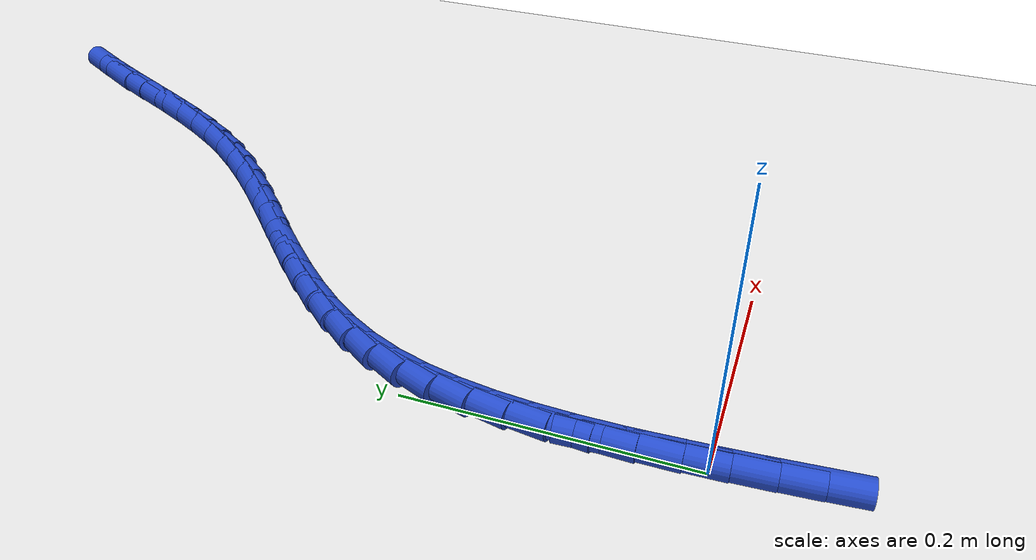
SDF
<sdf version="1.6">
 <world name="default">
  <model name="ground_plane">
   <static>1</static>
   <link name="link">
    <collision name="collision">
     <geometry><plane><normal>0 0 1</normal><size>100 100</size></plane></geometry>
     <surface><friction><ode><mu>100</mu><mu2>50</mu2></ode></friction></surface>
    </collision>
    <visual name="visual">
     <cast_shadows>0</cast_shadows>
     <geometry><plane><normal>0 0 1</normal><size>100 100</size></plane></geometry>
     <material>
      <script><uri>file://media/materials/scripts/gazebo.material</uri><name>Gazebo/WhiteGlow</name></script>
     </material>
    </visual>
   </link>
  </model>
  <model name="line">
   <link name="link_0">
    <pose>-3.144186300207963e-18 -2.7755575615628914e-17 0.01 0 1.57 -1.5155655868217317</pose>
    <collision name="collision">
     <geometry><cylinder><radius>0.01</radius><length>0.08</length></cylinder></geometry>
    </collision>
    <visual name="visual">
     <material>
      <script><name>Gazebo/Blue</name><uri>file://media/materials/scripts/gazebo.material</uri></script>
     </material>
     <geometry><cylinder><radius>0.01</radius><length>0.08</length></cylinder></geometry>
    </visual>
   </link>
   <link name="link_1">
    <pose>-0.0015131828939657498 0.027369612644585345 0.01 0 1.57 -1.5385693356199552</pose>
    <collision name="collision">
     <geometry><cylinder><radius>0.01</radius><length>0.08</length></cylinder></geometry>
    </collision>
    <visual name="visual">
     <material>
      <script><name>Gazebo/Blue</name><uri>file://media/materials/scripts/gazebo.material</uri></script>
     </material>
     <geometry><cylinder><radius>0.01</radius><length>0.08</length></cylinder></geometry>
    </visual>
   </link>
   <link name="link_2">
    <pose>-0.0024024075205045657 0.05495260222829566 0.01 0 1.57 1.5706447185464925</pose>
    <collision name="collision">
     <geometry><cylinder><radius>0.01</radius><length>0.08</length></cylinder></geometry>
    </collision>
    <visual name="visual">
     <material>
      <script><name>Gazebo/Blue</name><uri>file://media/materials/scripts/gazebo.material</uri></script>
     </material>
     <geometry><cylinder><radius>0.01</radius><length>0.08</length></cylinder></geometry>
    </visual>
   </link>
   <link name="link_3">
    <pose>-0.0023982279416030626 0.08252088372666737 0.01 0 1.57 1.5281137982298083</pose>
    <collision name="collision">
     <geometry><cylinder><radius>0.01</radius><length>0.08</length></cylinder></geometry>
    </collision>
    <visual name="visual">
     <material>
      <script><name>Gazebo/Blue</name><uri>file://media/materials/scripts/gazebo.material</uri></script>
     </material>
     <geometry><cylinder><radius>0.01</radius><length>0.08</length></cylinder></geometry>
    </visual>
   </link>
   <link name="link_4">
    <pose>-0.0012311982192478557 0.10984637211523679 0.01 0 1.57 1.4743043803389275</pose>
    <collision name="collision">
     <geometry><cylinder><radius>0.01</radius><length>0.08</length></cylinder></geometry>
    </collision>
    <visual name="visual">
     <material>
      <script><name>Gazebo/Blue</name><uri>file://media/materials/scripts/gazebo.material</uri></script>
     </material>
     <geometry><cylinder><radius>0.01</radius><length>0.08</length></cylinder></geometry>
    </visual>
   </link>
   <link name="link_5">
    <pose>0.001368127584574442 0.13670098236954034 0.01 0 1.57 1.4078136785738362</pose>
    <collision name="collision">
     <geometry><cylinder><radius>0.01</radius><length>0.08</length></cylinder></geometry>
    </collision>
    <visual name="visual">
     <material>
      <script><name>Gazebo/Blue</name><uri>file://media/materials/scripts/gazebo.material</uri></script>
     </material>
     <geometry><cylinder><radius>0.01</radius><length>0.08</length></cylinder></geometry>
    </visual>
   </link>
   <link name="link_6">
    <pose>0.00566919540787722 0.1628566294651144 0.01 0 1.57 1.327119838038077</pose>
    <collision name="collision">
     <geometry><cylinder><radius>0.01</radius><length>0.08</length></cylinder></geometry>
    </collision>
    <visual name="visual">
     <material>
      <script><name>Gazebo/Blue</name><uri>file://media/materials/scripts/gazebo.material</uri></script>
     </material>
     <geometry><cylinder><radius>0.01</radius><length>0.08</length></cylinder></geometry>
    </visual>
   </link>
   <link name="link_7">
    <pose>0.01194145118867386 0.18808522837749536 0.01 0 1.57 1.230899075451566</pose>
    <collision name="collision">
     <geometry><cylinder><radius>0.01</radius><length>0.08</length></cylinder></geometry>
    </collision>
    <visual name="visual">
     <material>
      <script><name>Gazebo/Blue</name><uri>file://media/materials/scripts/gazebo.material</uri></script>
     </material>
     <geometry><cylinder><radius>0.01</radius><length>0.08</length></cylinder></geometry>
    </visual>
   </link>
   <link name="link_8">
    <pose>0.020454340864977754 0.2121586940822196 0.01 0 1.57 1.1193891497618498</pose>
    <collision name="collision">
     <geometry><cylinder><radius>0.01</radius><length>0.08</length></cylinder></geometry>
    </collision>
    <visual name="visual">
     <material>
      <script><name>Gazebo/Blue</name><uri>file://media/materials/scripts/gazebo.material</uri></script>
     </material>
     <geometry><cylinder><radius>0.01</radius><length>0.08</length></cylinder></geometry>
    </visual>
   </link>
   <link name="link_9">
    <pose>0.03146032617717873 0.23486119402031436 0.01 0 1.57 1.008697879521988</pose>
    <collision name="collision">
     <geometry><cylinder><radius>0.01</radius><length>0.08</length></cylinder></geometry>
    </collision>
    <visual name="visual">
     <material>
      <script><name>Gazebo/Blue</name><uri>file://media/materials/scripts/gazebo.material</uri></script>
     </material>
     <geometry><cylinder><radius>0.01</radius><length>0.08</length></cylinder></geometry>
    </visual>
   </link>
   <link name="link_10">
    <pose>0.044901599075144176 0.2562007254530614 0.01 0 1.57 0.9143473147754952</pose>
    <collision name="collision">
     <geometry><cylinder><radius>0.01</radius><length>0.08</length></cylinder></geometry>
    </collision>
    <visual name="visual">
     <material>
      <script><name>Gazebo/Blue</name><uri>file://media/materials/scripts/gazebo.material</uri></script>
     </material>
     <geometry><cylinder><radius>0.01</radius><length>0.08</length></cylinder></geometry>
    </visual>
   </link>
   <link name="link_11">
    <pose>0.06044908451519783 0.2763809786942422 0.01 0 1.57 0.8377700902250539</pose>
    <collision name="collision">
     <geometry><cylinder><radius>0.01</radius><length>0.08</length></cylinder></geometry>
    </collision>
    <visual name="visual">
     <material>
      <script><name>Gazebo/Blue</name><uri>file://media/materials/scripts/gazebo.material</uri></script>
     </material>
     <geometry><cylinder><radius>0.01</radius><length>0.08</length></cylinder></geometry>
    </visual>
   </link>
   <link name="link_12">
    <pose>0.07776456797215217 0.29561223731475306 0.01 0 1.57 0.7786116346671724</pose>
    <collision name="collision">
     <geometry><cylinder><radius>0.01</radius><length>0.08</length></cylinder></geometry>
    </collision>
    <visual name="visual">
     <material>
      <script><name>Gazebo/Blue</name><uri>file://media/materials/scripts/gazebo.material</uri></script>
     </material>
     <geometry><cylinder><radius>0.01</radius><length>0.08</length></cylinder></geometry>
    </visual>
   </link>
   <link name="link_13">
    <pose>0.0965098349208197 0.31410478488549026 0.01 0 1.57 0.7358971410100231</pose>
    <collision name="collision">
     <geometry><cylinder><radius>0.01</radius><length>0.08</length></cylinder></geometry>
    </collision>
    <visual name="visual">
     <material>
      <script><name>Gazebo/Blue</name><uri>file://media/materials/scripts/gazebo.material</uri></script>
     </material>
     <geometry><cylinder><radius>0.01</radius><length>0.08</length></cylinder></geometry>
    </visual>
   </link>
   <link name="link_14">
    <pose>0.11634667083601286 0.33206890497735025 0.01 0 1.57 0.7085490389407896</pose>
    <collision name="collision">
     <geometry><cylinder><radius>0.01</radius><length>0.08</length></cylinder></geometry>
    </collision>
    <visual name="visual">
     <material>
      <script><name>Gazebo/Blue</name><uri>file://media/materials/scripts/gazebo.material</uri></script>
     </material>
     <geometry><cylinder><radius>0.01</radius><length>0.08</length></cylinder></geometry>
    </visual>
   </link>
   <link name="link_15">
    <pose>0.13693686119254422 0.3497148811612294 0.01 0 1.57 0.6956836310359242</pose>
    <collision name="collision">
     <geometry><cylinder><radius>0.01</radius><length>0.08</length></cylinder></geometry>
    </collision>
    <visual name="visual">
     <material>
      <script><name>Gazebo/Blue</name><uri>file://media/materials/scripts/gazebo.material</uri></script>
     </material>
     <geometry><cylinder><radius>0.01</radius><length>0.08</length></cylinder></geometry>
    </visual>
   </link>
   <link name="link_16">
    <pose>0.15794219146522626 0.36725299700802405 0.01 0 1.57 0.6967502145703364</pose>
    <collision name="collision">
     <geometry><cylinder><radius>0.01</radius><length>0.08</length></cylinder></geometry>
    </collision>
    <visual name="visual">
     <material>
      <script><name>Gazebo/Blue</name><uri>file://media/materials/scripts/gazebo.material</uri></script>
     </material>
     <geometry><cylinder><radius>0.01</radius><length>0.08</length></cylinder></geometry>
    </visual>
   </link>
   <link name="link_17">
    <pose>0.1790244471288714 0.3848935360886303 0.01 0 1.57 0.7115730939831011</pose>
    <collision name="collision">
     <geometry><cylinder><radius>0.01</radius><length>0.08</length></cylinder></geometry>
    </collision>
    <visual name="visual">
     <material>
      <script><name>Gazebo/Blue</name><uri>file://media/materials/scripts/gazebo.material</uri></script>
     </material>
     <geometry><cylinder><radius>0.01</radius><length>0.08</length></cylinder></geometry>
    </visual>
   </link>
   <link name="link_18">
    <pose>0.19984541365829217 0.4028467819739448 0.01 0 1.57 0.7403297258838916</pose>
    <collision name="collision">
     <geometry><cylinder><radius>0.01</radius><length>0.08</length></cylinder></geometry>
    </collision>
    <visual name="visual">
     <material>
      <script><name>Gazebo/Blue</name><uri>file://media/materials/scripts/gazebo.material</uri></script>
     </material>
     <geometry><cylinder><radius>0.01</radius><length>0.08</length></cylinder></geometry>
    </visual>
   </link>
   <link name="link_19">
    <pose>0.220066876528301 0.4213230182348637 0.01 0 1.57 0.783469659659139</pose>
    <collision name="collision">
     <geometry><cylinder><radius>0.01</radius><length>0.08</length></cylinder></geometry>
    </collision>
    <visual name="visual">
     <material>
      <script><name>Gazebo/Blue</name><uri>file://media/materials/scripts/gazebo.material</uri></script>
     </material>
     <geometry><cylinder><radius>0.01</radius><length>0.08</length></cylinder></geometry>
    </visual>
   </link>
   <link name="link_20">
    <pose>0.23935062121371053 0.4405325284422835 0.01 0 1.57 0.8415551008620998</pose>
    <collision name="collision">
     <geometry><cylinder><radius>0.01</radius><length>0.08</length></cylinder></geometry>
    </collision>
    <visual name="visual">
     <material>
      <script><name>Gazebo/Blue</name><uri>file://media/materials/scripts/gazebo.material</uri></script>
     </material>
     <geometry><cylinder><radius>0.01</radius><length>0.08</length></cylinder></geometry>
    </visual>
   </link>
   <link name="link_21">
    <pose>0.2573584343836197 0.4606855953335093 0.01 0 1.57 0.9100082846713267</pose>
    <collision name="collision">
     <geometry><cylinder><radius>0.01</radius><length>0.08</length></cylinder></geometry>
    </collision>
    <visual name="visual">
     <material>
      <script><name>Gazebo/Blue</name><uri>file://media/materials/scripts/gazebo.material</uri></script>
     </material>
     <geometry><cylinder><radius>0.01</radius><length>0.08</length></cylinder></geometry>
    </visual>
   </link>
   <link name="link_22">
    <pose>0.27386207834928405 0.4819157405813134 0.01 0 1.57 0.969997503382248</pose>
    <collision name="collision">
     <geometry><cylinder><radius>0.01</radius><length>0.08</length></cylinder></geometry>
    </collision>
    <visual name="visual">
     <material>
      <script><name>Gazebo/Blue</name><uri>file://media/materials/scripts/gazebo.material</uri></script>
     </material>
     <geometry><cylinder><radius>0.01</radius><length>0.08</length></cylinder></geometry>
    </visual>
   </link>
   <link name="link_23">
    <pose>0.2890443412236979 0.5040695970758848 0.01 0 1.57 1.0168056320549819</pose>
    <collision name="collision">
     <geometry><cylinder><radius>0.01</radius><length>0.08</length></cylinder></geometry>
    </collision>
    <visual name="visual">
     <material>
      <script><name>Gazebo/Blue</name><uri>file://media/materials/scripts/gazebo.material</uri></script>
     </material>
     <geometry><cylinder><radius>0.01</radius><length>0.08</length></cylinder></geometry>
    </visual>
   </link>
   <link name="link_24">
    <pose>0.3031840164467783 0.5269267876772736 0.01 0 1.57 1.050402651763237</pose>
    <collision name="collision">
     <geometry><cylinder><radius>0.01</radius><length>0.08</length></cylinder></geometry>
    </collision>
    <visual name="visual">
     <material>
      <script><name>Gazebo/Blue</name><uri>file://media/materials/scripts/gazebo.material</uri></script>
     </material>
     <geometry><cylinder><radius>0.01</radius><length>0.08</length></cylinder></geometry>
    </visual>
   </link>
   <link name="link_25">
    <pose>0.31655989745844215 0.55026693524553 0.01 0 1.57 1.0709055941381729</pose>
    <collision name="collision">
     <geometry><cylinder><radius>0.01</radius><length>0.08</length></cylinder></geometry>
    </collision>
    <visual name="visual">
     <material>
      <script><name>Gazebo/Blue</name><uri>file://media/materials/scripts/gazebo.material</uri></script>
     </material>
     <geometry><cylinder><radius>0.01</radius><length>0.08</length></cylinder></geometry>
    </visual>
   </link>
   <link name="link_26">
    <pose>0.3294507776986065 0.5738696626407044 0.01 0 1.57 1.0784041709291683</pose>
    <collision name="collision">
     <geometry><cylinder><radius>0.01</radius><length>0.08</length></cylinder></geometry>
    </collision>
    <visual name="visual">
     <material>
      <script><name>Gazebo/Blue</name><uri>file://media/materials/scripts/gazebo.material</uri></script>
     </material>
     <geometry><cylinder><radius>0.01</radius><length>0.08</length></cylinder></geometry>
    </visual>
   </link>
   <link name="link_27">
    <pose>0.3421354506071885 0.5975145927228465 0.01 0 1.57 1.0728559851785364</pose>
    <collision name="collision">
     <geometry><cylinder><radius>0.01</radius><length>0.08</length></cylinder></geometry>
    </collision>
    <visual name="visual">
     <material>
      <script><name>Gazebo/Blue</name><uri>file://media/materials/scripts/gazebo.material</uri></script>
     </material>
     <geometry><cylinder><radius>0.01</radius><length>0.08</length></cylinder></geometry>
    </visual>
   </link>
   <link name="link_28">
    <pose>0.35489270962410485 0.6209813483520068 0.01 0 1.57 1.0540453341446754</pose>
    <collision name="collision">
     <geometry><cylinder><radius>0.01</radius><length>0.08</length></cylinder></geometry>
    </collision>
    <visual name="visual">
     <material>
      <script><name>Gazebo/Blue</name><uri>file://media/materials/scripts/gazebo.material</uri></script>
     </material>
     <geometry><cylinder><radius>0.01</radius><length>0.08</length></cylinder></geometry>
    </visual>
   </link>
   <link name="link_29">
    <pose>0.368001348189273 0.6440495523882355 0.01 0 1.57 1.0216046861269452</pose>
    <collision name="collision">
     <geometry><cylinder><radius>0.01</radius><length>0.08</length></cylinder></geometry>
    </collision>
    <visual name="visual">
     <material>
      <script><name>Gazebo/Blue</name><uri>file://media/materials/scripts/gazebo.material</uri></script>
     </material>
     <geometry><cylinder><radius>0.01</radius><length>0.08</length></cylinder></geometry>
    </visual>
   </link>
   <link name="link_278">
    <pose>0.004149985594517539 -0.053604778614262036 0.01 0 1.57 -1.4868195702521556</pose>
    <collision name="collision">
     <geometry><cylinder><radius>0.01</radius><length>0.08</length></cylinder></geometry>
    </collision>
    <visual name="visual">
     <material>
      <script><name>Gazebo/Blue</name><uri>file://media/materials/scripts/gazebo.material</uri></script>
     </material>
     <geometry><cylinder><radius>0.01</radius><length>0.08</length></cylinder></geometry>
    </visual>
   </link>
   <link name="link_279">
    <pose>0.0019088863179241306 -0.026980403711036785 0.01 0 1.57 -1.5001631821662043</pose>
    <collision name="collision">
     <geometry><cylinder><radius>0.01</radius><length>0.08</length></cylinder></geometry>
    </collision>
    <visual name="visual">
     <material>
      <script><name>Gazebo/Blue</name><uri>file://media/materials/scripts/gazebo.material</uri></script>
     </material>
     <geometry><cylinder><radius>0.01</radius><length>0.08</length></cylinder></geometry>
    </visual>
   </link>
   <link name="link_280">
    <pose>4.87890977618477e-18 -1.1796119636642288e-16 0.01 0 1.57 -1.514173176123728</pose>
    <collision name="collision">
     <geometry><cylinder><radius>0.01</radius><length>0.08</length></cylinder></geometry>
    </collision>
    <visual name="visual">
     <material>
      <script><name>Gazebo/Blue</name><uri>file://media/materials/scripts/gazebo.material</uri></script>
     </material>
     <geometry><cylinder><radius>0.01</radius><length>0.08</length></cylinder></geometry>
    </visual>
   </link>
   <link name="link_281">
    <pose>-0.0015543739885105798 0.027421865674625137 0.01 0 1.57 -1.52868833342758</pose>
    <collision name="collision">
     <geometry><cylinder><radius>0.01</radius><length>0.08</length></cylinder></geometry>
    </collision>
    <visual name="visual">
     <material>
      <script><name>Gazebo/Blue</name><uri>file://media/materials/scripts/gazebo.material</uri></script>
     </material>
     <geometry><cylinder><radius>0.01</radius><length>0.08</length></cylinder></geometry>
    </visual>
   </link>
   <link name="link_282">
    <pose>-0.00273193627686329 0.05537062646861536 0.01 0 1.57 -1.5214972153804966</pose>
    <collision name="collision">
     <geometry><cylinder><radius>0.01</radius><length>0.08</length></cylinder></geometry>
    </collision>
    <visual name="visual">
     <material>
      <script><name>Gazebo/Blue</name><uri>file://media/materials/scripts/gazebo.material</uri></script>
     </material>
     <geometry><cylinder><radius>0.01</radius><length>0.08</length></cylinder></geometry>
    </visual>
   </link>
  </model>
 </world>
</sdf>
